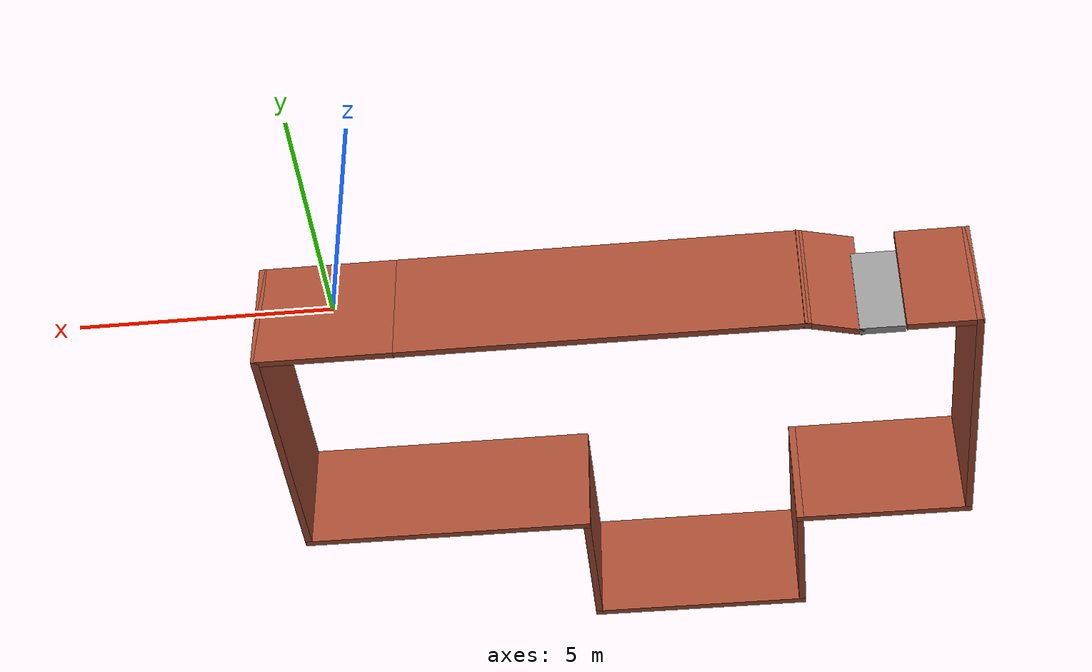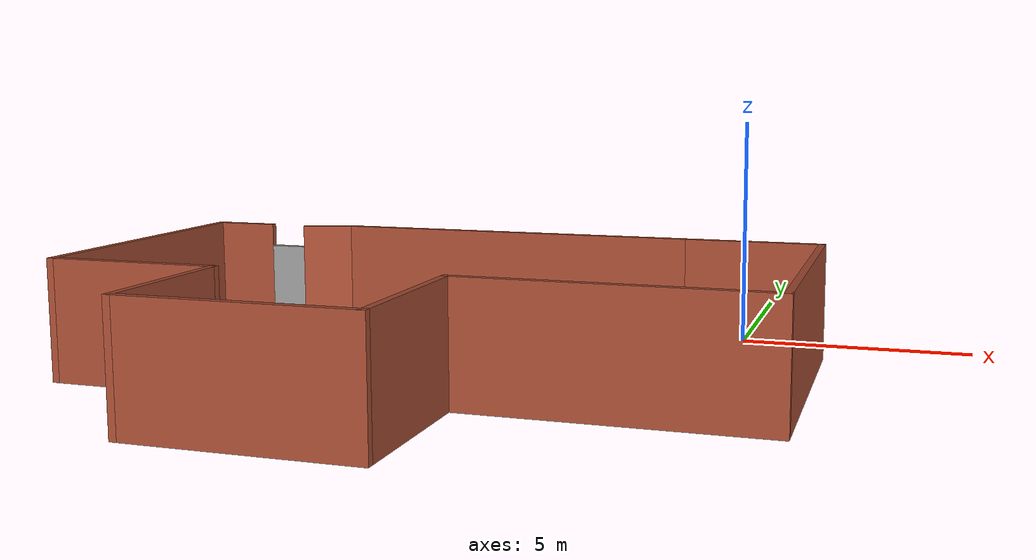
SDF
<?xml version='1.0'?>
<sdf version='1.6'>
  <model name='hospital'>
    <pose frame=''>-5.3015 -6.18255 0 0 -0 0</pose>
    <link name='Door_0'>
      <collision name='Door_0_Collision'>
        <geometry>
          <box>
            <size>0.9 0.17 2</size>
          </box>
        </geometry>
        <pose frame=''>0 0 1 0 -0 0</pose>
      </collision>
      <visual name='Door_0_Visual'>
        <pose frame=''>0 0 1 0 -0 0</pose>
        <geometry>
          <box>
            <size>0.9 0.17 2</size>
          </box>
        </geometry>
        <material>
          <script>
            <uri>file://media/materials/scripts/gazebo.material</uri>
            <name>Gazebo/Grey</name>
          </script>
        </material>
      </visual>
      <pose frame=''>-5.25379 4.43666 0 0 -0 0</pose>
    </link>
    <link name='Wall_1'>
      <collision name='Wall_1_Collision'>
        <geometry>
          <box>
            <size>8.25 0.15 2.5</size>
          </box>
        </geometry>
        <pose frame=''>0 0 1.25 0 -0 0</pose>
      </collision>
      <visual name='Wall_1_Visual'>
        <pose frame=''>0 0 1.25 0 -0 0</pose>
        <geometry>
          <box>
            <size>8.25 0.15 2.5</size>
          </box>
        </geometry>
        <material>
          <script>
            <uri>file://media/materials/scripts/gazebo.material</uri>
            <name>Gazebo/Bricks</name>
          </script>
          <ambient>1 1 1 1</ambient>
        </material>
        <meta>
          <layer>0</layer>
        </meta>
      </visual>
      <pose frame=''>0.25 4.71605 0 0 -0 0</pose>
    </link>
    <link name='Wall_10'>
      <collision name='Wall_10_Collision'>
        <geometry>
          <box>
            <size>1.5 0.15 2.5</size>
          </box>
        </geometry>
        <pose frame=''>0 0 1.25 0 -0 0</pose>
      </collision>
      <visual name='Wall_10_Visual'>
        <pose frame=''>0 0 1.25 0 -0 0</pose>
        <geometry>
          <box>
            <size>1.5 0.15 2.5</size>
          </box>
        </geometry>
        <material>
          <script>
            <uri>file://media/materials/scripts/gazebo.material</uri>
            <name>Gazebo/Bricks</name>
          </script>
          <ambient>1 1 1 1</ambient>
        </material>
        <meta>
          <layer>0</layer>
        </meta>
      </visual>
      <pose frame=''>-6.475 4.46605 0 0 -0 0</pose>
    </link>
    <link name='Wall_14'>
      <collision name='Wall_14_Collision'>
        <geometry>
          <box>
            <size>1.20925 0.15 2.5</size>
          </box>
        </geometry>
        <pose frame=''>0 0 1.25 0 -0 0</pose>
      </collision>
      <visual name='Wall_14_Visual'>
        <pose frame=''>0 0 1.25 0 -0 0</pose>
        <geometry>
          <box>
            <size>1.20925 0.15 2.5</size>
          </box>
        </geometry>
        <material>
          <script>
            <uri>file://media/materials/scripts/gazebo.material</uri>
            <name>Gazebo/Bricks</name>
          </script>
          <ambient>1 1 1 1</ambient>
        </material>
        <meta>
          <layer>0</layer>
        </meta>
      </visual>
      <pose frame=''>-4.30874 4.56881 0 0 -0 0.281735</pose>
    </link>
    <link name='Wall_2'>
      <collision name='Wall_2_Collision'>
        <geometry>
          <box>
            <size>3 0.15 2.5</size>
          </box>
        </geometry>
        <pose frame=''>0 0 1.25 0 -0 0</pose>
      </collision>
      <visual name='Wall_2_Visual'>
        <pose frame=''>0 0 1.25 0 -0 0</pose>
        <geometry>
          <box>
            <size>3 0.15 2.5</size>
          </box>
        </geometry>
        <material>
          <script>
            <uri>file://media/materials/scripts/gazebo.material</uri>
            <name>Gazebo/Bricks</name>
          </script>
          <ambient>1 1 1 1</ambient>
        </material>
        <meta>
          <layer>0</layer>
        </meta>
      </visual>
      <pose frame=''>5.725 4.71605 0 0 -0 0</pose>
    </link>
    <link name='Wall_3'>
      <collision name='Wall_3_Collision'>
        <geometry>
          <box>
            <size>6.25 0.15 2.5</size>
          </box>
        </geometry>
        <pose frame=''>0 0 1.25 0 -0 0</pose>
      </collision>
      <visual name='Wall_3_Visual'>
        <pose frame=''>0 0 1.25 0 -0 0</pose>
        <geometry>
          <box>
            <size>6.25 0.15 2.5</size>
          </box>
        </geometry>
        <material>
          <script>
            <uri>file://media/materials/scripts/gazebo.material</uri>
            <name>Gazebo/Bricks</name>
          </script>
          <ambient>1 1 1 1</ambient>
        </material>
        <meta>
          <layer>0</layer>
        </meta>
      </visual>
      <pose frame=''>7.15 1.66605 0 0 -0 -1.5708</pose>
    </link>
    <link name='Wall_4'>
      <collision name='Wall_4_Collision'>
        <geometry>
          <box>
            <size>6.25 0.15 2.5</size>
          </box>
        </geometry>
        <pose frame=''>0 0 1.25 0 -0 0</pose>
      </collision>
      <visual name='Wall_4_Visual'>
        <pose frame=''>0 0 1.25 0 -0 0</pose>
        <geometry>
          <box>
            <size>6.25 0.15 2.5</size>
          </box>
        </geometry>
        <material>
          <script>
            <uri>file://media/materials/scripts/gazebo.material</uri>
            <name>Gazebo/Bricks</name>
          </script>
          <ambient>1 1 1 1</ambient>
        </material>
        <meta>
          <layer>0</layer>
        </meta>
      </visual>
      <pose frame=''>4.1 -1.38395 0 0 -0 3.14159</pose>
    </link>
    <link name='Wall_5'>
      <collision name='Wall_5_Collision'>
        <geometry>
          <box>
            <size>3.5 0.15 2.5</size>
          </box>
        </geometry>
        <pose frame=''>0 0 1.25 0 -0 0</pose>
      </collision>
      <visual name='Wall_5_Visual'>
        <pose frame=''>0 0 1.25 0 -0 0</pose>
        <geometry>
          <box>
            <size>3.5 0.15 2.5</size>
          </box>
        </geometry>
        <material>
          <script>
            <uri>file://media/materials/scripts/gazebo.material</uri>
            <name>Gazebo/Bricks</name>
          </script>
          <ambient>1 1 1 1</ambient>
        </material>
        <meta>
          <layer>0</layer>
        </meta>
      </visual>
      <pose frame=''>1.05 -3.05895 0 0 -0 -1.5708</pose>
    </link>
    <link name='Wall_6'>
      <collision name='Wall_6_Collision'>
        <geometry>
          <box>
            <size>4.75 0.15 2.5</size>
          </box>
        </geometry>
        <pose frame=''>0 0 1.25 0 -0 0</pose>
      </collision>
      <visual name='Wall_6_Visual'>
        <pose frame=''>0 0 1.25 0 -0 0</pose>
        <geometry>
          <box>
            <size>4.75 0.15 2.5</size>
          </box>
        </geometry>
        <material>
          <script>
            <uri>file://media/materials/scripts/gazebo.material</uri>
            <name>Gazebo/Bricks</name>
          </script>
          <ambient>1 1 1 1</ambient>
        </material>
        <meta>
          <layer>0</layer>
        </meta>
      </visual>
      <pose frame=''>-1.25 -4.73395 0 0 -0 3.14159</pose>
    </link>
    <link name='Wall_7'>
      <collision name='Wall_7_Collision'>
        <geometry>
          <box>
            <size>3.25 0.15 2.5</size>
          </box>
        </geometry>
        <pose frame=''>0 0 1.25 0 -0 0</pose>
      </collision>
      <visual name='Wall_7_Visual'>
        <pose frame=''>0 0 1.25 0 -0 0</pose>
        <geometry>
          <box>
            <size>3.25 0.15 2.5</size>
          </box>
        </geometry>
        <material>
          <script>
            <uri>file://media/materials/scripts/gazebo.material</uri>
            <name>Gazebo/Bricks</name>
          </script>
          <ambient>1 1 1 1</ambient>
        </material>
        <meta>
          <layer>0</layer>
        </meta>
      </visual>
      <pose frame=''>-3.55 -3.18395 0 0 -0 1.5708</pose>
    </link>
    <link name='Wall_8'>
      <collision name='Wall_8_Collision'>
        <geometry>
          <box>
            <size>3.75 0.15 2.5</size>
          </box>
        </geometry>
        <pose frame=''>0 0 1.25 0 -0 0</pose>
      </collision>
      <visual name='Wall_8_Visual'>
        <pose frame=''>0 0 1.25 0 -0 0</pose>
        <geometry>
          <box>
            <size>3.75 0.15 2.5</size>
          </box>
        </geometry>
        <material>
          <script>
            <uri>file://media/materials/scripts/gazebo.material</uri>
            <name>Gazebo/Bricks</name>
          </script>
          <ambient>1 1 1 1</ambient>
        </material>
        <meta>
          <layer>0</layer>
        </meta>
      </visual>
      <pose frame=''>-5.35 -1.63395 0 0 -0 3.14159</pose>
    </link>
    <link name='Wall_9'>
      <collision name='Wall_9_Collision'>
        <geometry>
          <box>
            <size>6.25 0.15 2.5</size>
          </box>
        </geometry>
        <pose frame=''>0 0 1.25 0 -0 0</pose>
      </collision>
      <visual name='Wall_9_Visual'>
        <pose frame=''>0 0 1.25 0 -0 0</pose>
        <geometry>
          <box>
            <size>6.25 0.15 2.5</size>
          </box>
        </geometry>
        <material>
          <script>
            <uri>file://media/materials/scripts/gazebo.material</uri>
            <name>Gazebo/Bricks</name>
          </script>
          <ambient>1 1 1 1</ambient>
        </material>
        <meta>
          <layer>0</layer>
        </meta>
      </visual>
      <pose frame=''>-7.15 1.41605 0 0 -0 1.5708</pose>
    </link>
    <static>1</static>
  </model>
</sdf>
